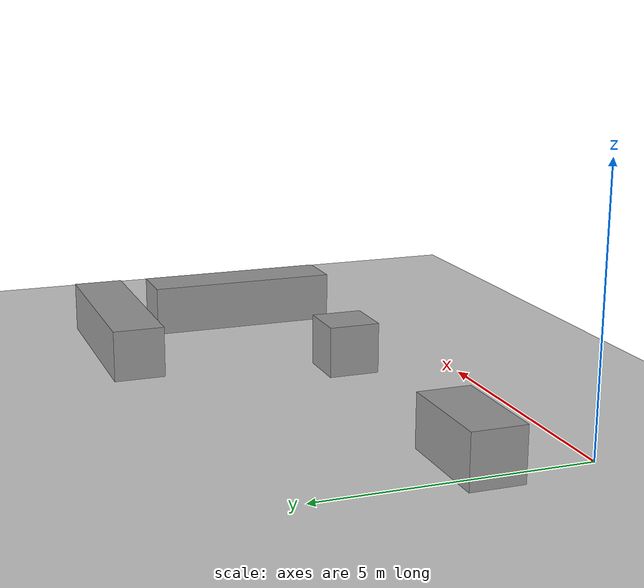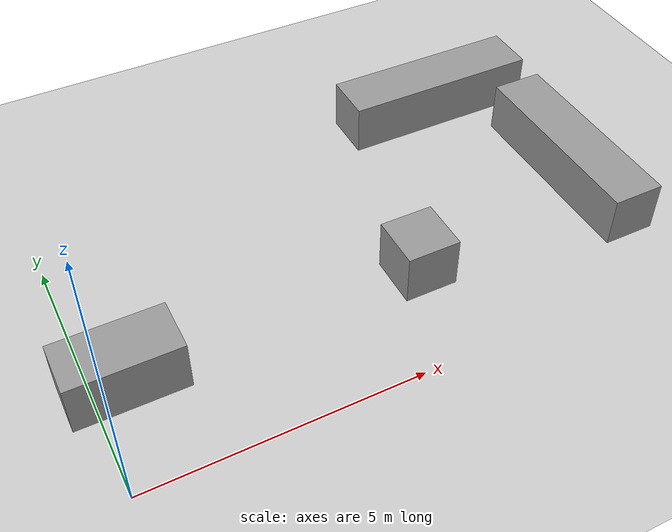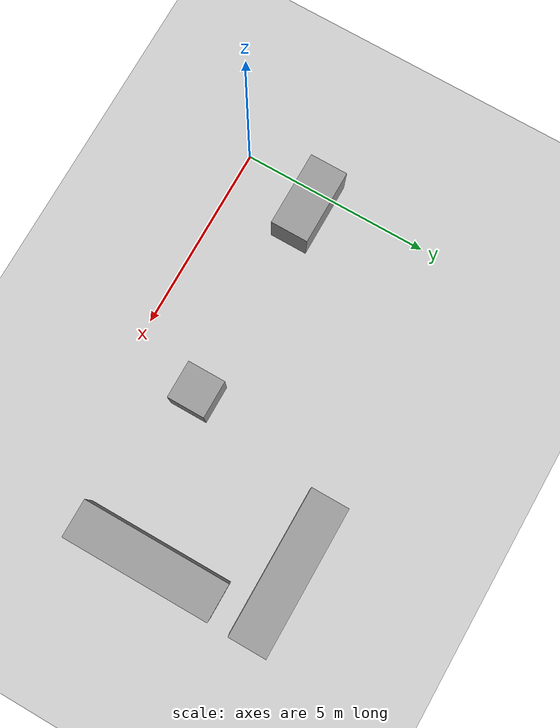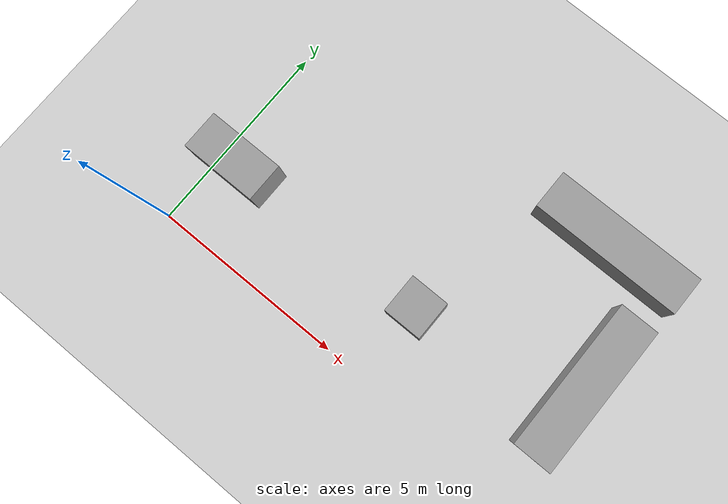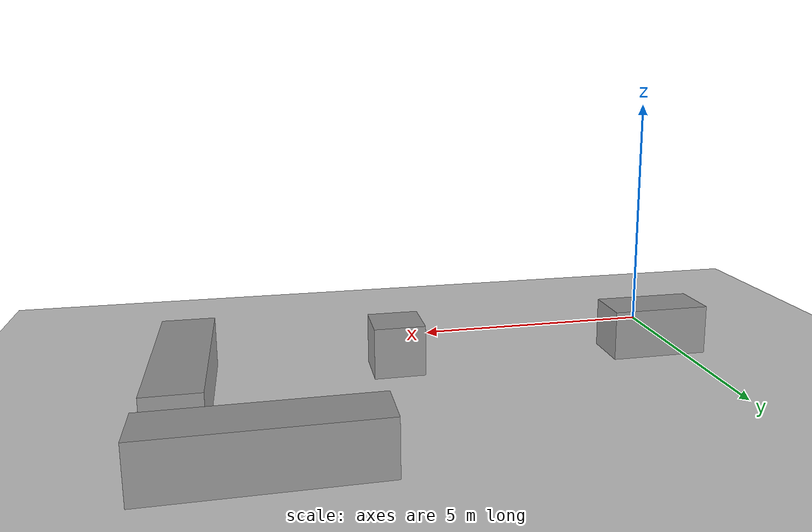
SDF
<sdf version="1.7">
 <world name="default">
  <light name="sun" type="directional">
   <pose>0 0 10 0 -0 0</pose>
   <diffuse>0.8 0.8 0.8 1</diffuse>
   <specular>0.2 0.2 0.2 1</specular>
   <attenuation>
    <range>1000</range>
    <constant>0.9</constant>
    <linear>0.01</linear>
    <quadratic>0.001</quadratic>
   </attenuation>
   <direction>-0.5 0.1 -0.9</direction>
   <spot><inner_angle>0</inner_angle><outer_angle>0</outer_angle><falloff>0</falloff></spot>
  </light>
  <model name="ground_plane">
   <static>1</static>
   <link name="link">
    <collision name="collision">
     <geometry><plane><normal>0 0 1</normal><size>100 100</size></plane></geometry>
     <surface>
      <contact><collide_bitmask>65535</collide_bitmask></contact>
      <friction><ode><mu>100</mu><mu2>50</mu2></ode></friction>
     </surface>
    </collision>
    <visual name="visual">
     <cast_shadows>0</cast_shadows>
     <geometry><plane><normal>0 0 1</normal><size>100 100</size></plane></geometry>
     <material>
      <script><uri>file://media/materials/scripts/gazebo.material</uri><name>Gazebo/Grey</name></script>
     </material>
    </visual>
   </link>
  </model>
  <gravity>0 0 -9.8</gravity>
  <magnetic_field>6e-06 2.3e-05 -4.2e-05</magnetic_field>
  <atmosphere type="adiabatic"/>
  <physics type="ode">
   <max_step_size>0.001</max_step_size>
   <real_time_factor>1</real_time_factor>
   <real_time_update_rate>1000</real_time_update_rate>
  </physics>
  <scene><ambient>0.4 0.4 0.4 1</ambient><background>0.7 0.7 0.7 1</background><shadows>1</shadows></scene>
  <spherical_coordinates>
   <surface_model>EARTH_WGS84</surface_model>
   <latitude_deg>0</latitude_deg>
   <longitude_deg>0</longitude_deg>
   <elevation>0</elevation>
   <heading_deg>0</heading_deg>
  </spherical_coordinates>
  <model name="unit_box">
   <pose>0.546386 2.00019 0.5 0 -0 -4e-05</pose>
   <link name="link">
    <inertial>
     <mass>1</mass>
     <inertia>
      <ixx>0.166667</ixx>
      <ixy>0</ixy>
      <ixz>0</ixz>
      <iyy>0.166667</iyy>
      <iyz>0</iyz>
      <izz>0.166667</izz>
     </inertia>
    </inertial>
    <collision name="collision"><geometry><box><size>1.9945 1 1</size></box></geometry></collision>
    <visual name="visual">
     <geometry><box><size>1.9945 1 1</size></box></geometry>
     <material>
      <script><name>Gazebo/Grey</name><uri>file://media/materials/scripts/gazebo.material</uri></script>
     </material>
    </visual>
   </link>
  </model>
  <model name="unit_box_0">
   <pose>6 1.99999 0.499995 0 1e-05 0</pose>
   <link name="link">
    <inertial>
     <mass>1</mass>
     <inertia>
      <ixx>0.166667</ixx>
      <ixy>0</ixy>
      <ixz>0</ixz>
      <iyy>0.166667</iyy>
      <iyz>0</iyz>
      <izz>0.166667</izz>
     </inertia>
    </inertial>
    <collision name="collision"><geometry><box><size>1 1 1</size></box></geometry></collision>
    <visual name="visual">
     <geometry><box><size>1 1 1</size></box></geometry>
     <material>
      <script><name>Gazebo/Grey</name><uri>file://media/materials/scripts/gazebo.material</uri></script>
     </material>
    </visual>
   </link>
  </model>
  <model name="unit_box_0_clone">
   <pose>10 3.00008 0.499353 -0.000333 -0 -0</pose>
   <link name="link">
    <inertial>
     <mass>1</mass>
     <inertia>
      <ixx>0.166667</ixx>
      <ixy>0</ixy>
      <ixz>0</ixz>
      <iyy>0.166667</iyy>
      <iyz>0</iyz>
      <izz>0.166667</izz>
     </inertia>
    </inertial>
    <collision name="collision"><geometry><box><size>1 3.88325 1</size></box></geometry></collision>
    <visual name="visual">
     <geometry><box><size>1 3.88325 1</size></box></geometry>
     <material>
      <script><name>Gazebo/Grey</name><uri>file://media/materials/scripts/gazebo.material</uri></script>
     </material>
    </visual>
   </link>
  </model>
  <model name="unit_box_0_clone_clone">
   <pose>8.59284 5.99982 0.499996 0 7e-06 -1.5708</pose>
   <link name="link">
    <inertial>
     <mass>1</mass>
     <inertia>
      <ixx>0.166667</ixx>
      <ixy>0</ixy>
      <ixz>0</ixz>
      <iyy>0.166667</iyy>
      <iyz>0</iyz>
      <izz>0.166667</izz>
     </inertia>
    </inertial>
    <collision name="collision"><geometry><box><size>1 3.88325 1</size></box></geometry></collision>
    <visual name="visual">
     <geometry><box><size>1 3.88325 1</size></box></geometry>
     <material>
      <script><name>Gazebo/Grey</name><uri>file://media/materials/scripts/gazebo.material</uri></script>
     </material>
    </visual>
   </link>
  </model>
 </world>
</sdf>
